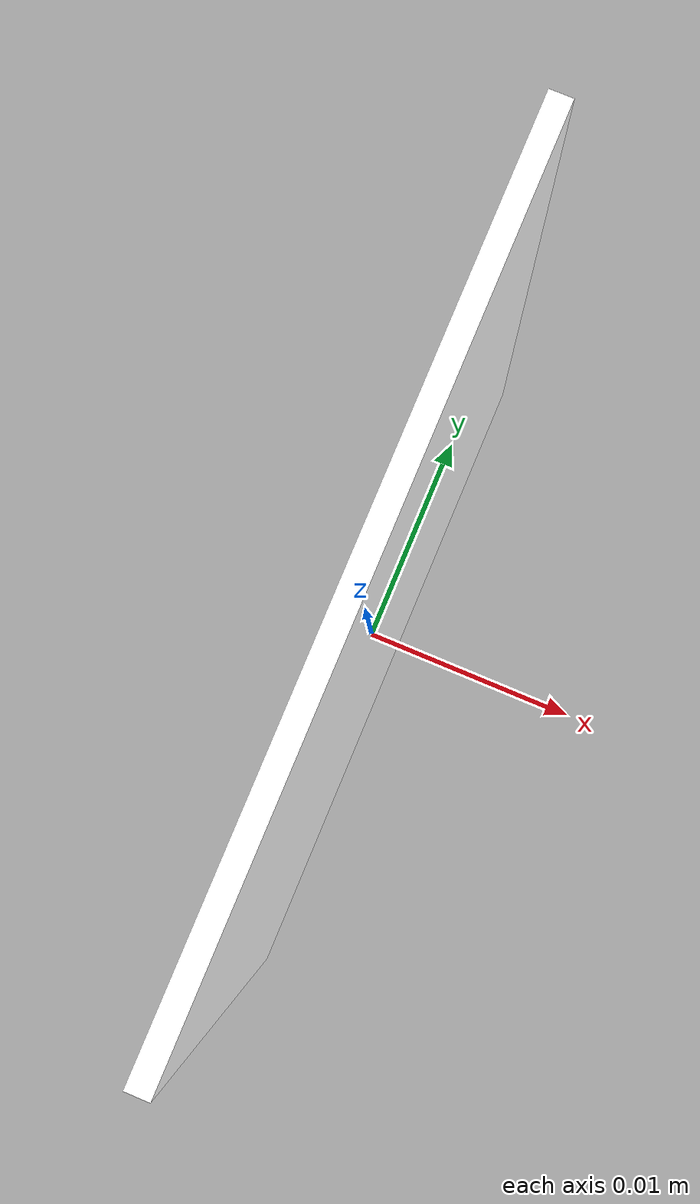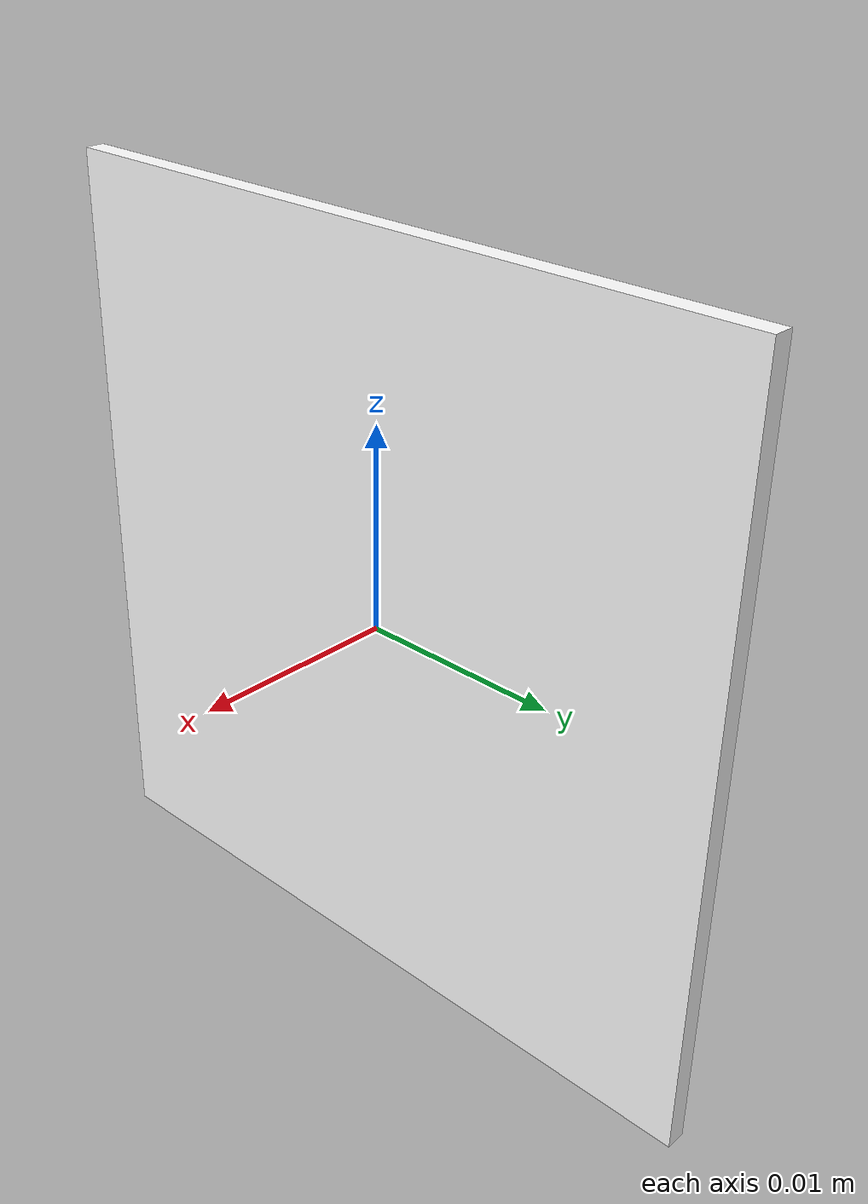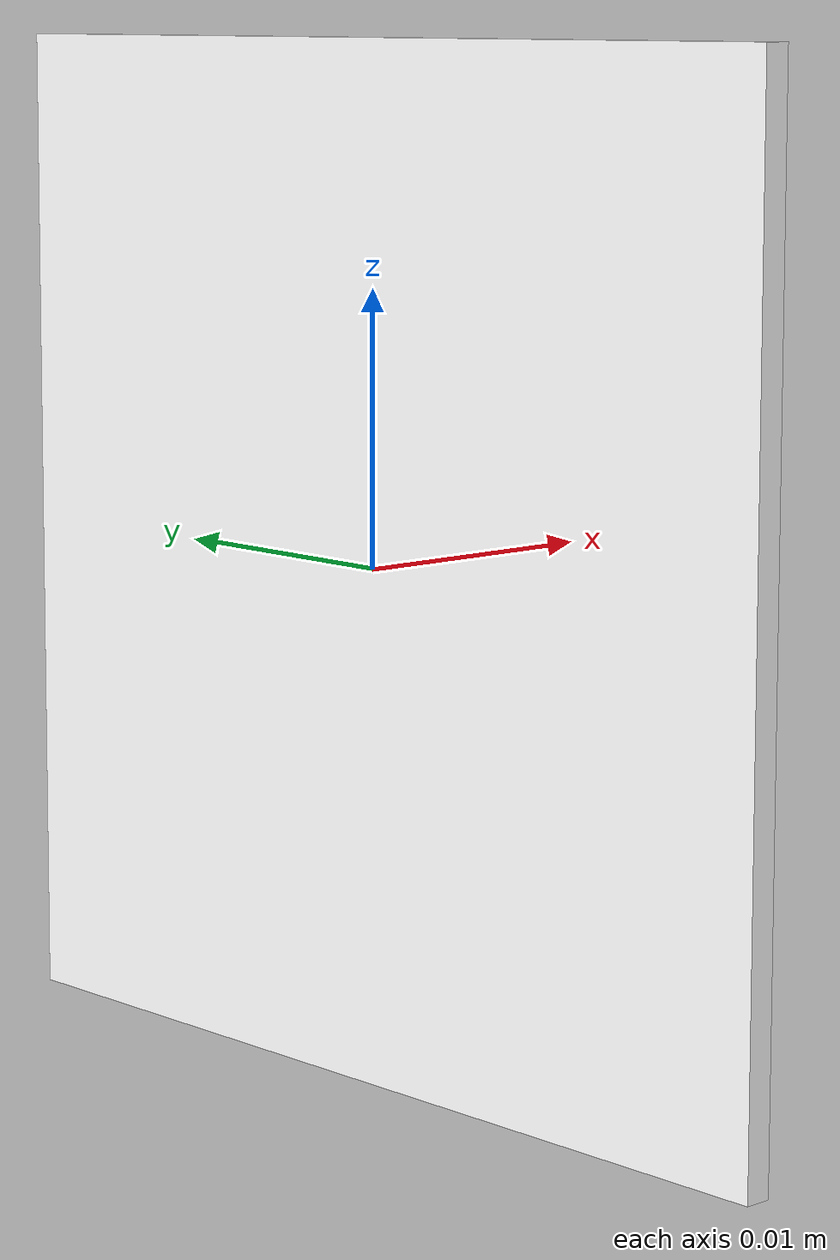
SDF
<?xml version="1.0"?>
<sdf version="1.8">
  <model name="apriltag_36h11_id1">
    <!--
      AprilTag 36h11 ID 1
      크기: 37.5 x 37.5 mm (이전 150x150 의 1/4 폭, 1/4 높이)
      두께: 1mm
      X축이 두께 방향 (이미지 면 normal). yaw 0 으로 spawn 하면
      이미지가 +-X 방향을 향함.
    -->
    <static>true</static>
    <link name="link">
      <visual name="visual">
        <geometry>
          <box>
            <size>0.001 0.0375 0.0375</size>
          </box>
        </geometry>
        <material>
          <ambient>1 1 1 1</ambient>
          <diffuse>1 1 1 1</diffuse>
          <specular>0 0 0 1</specular>
          <pbr>
            <metal>
              <albedo_map>model://markers/apriltag_36h11_id1/meshes/apriltag_36h11_id1.png</albedo_map>
              <metalness>0.0</metalness>
              <roughness>1.0</roughness>
            </metal>
          </pbr>
        </material>
      </visual>
      <collision name="collision">
        <geometry>
          <box>
            <size>0.001 0.0375 0.0375</size>
          </box>
        </geometry>
      </collision>
    </link>
  </model>
</sdf>
